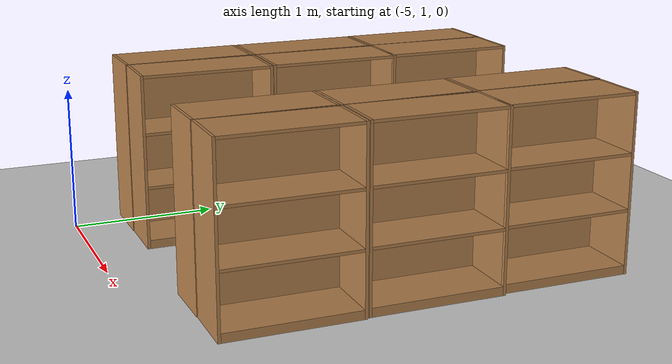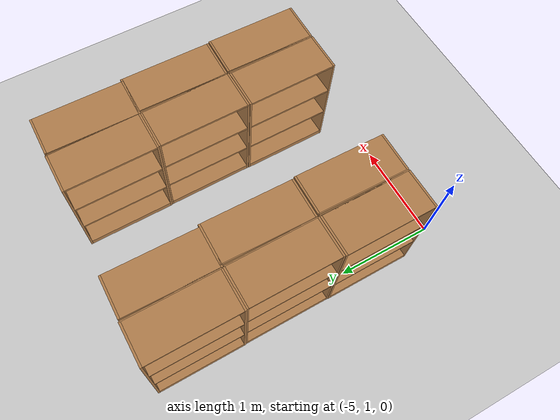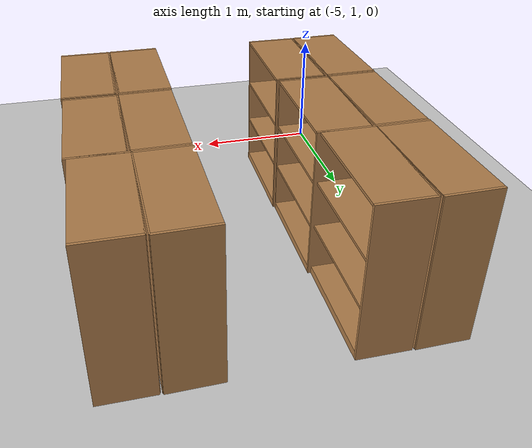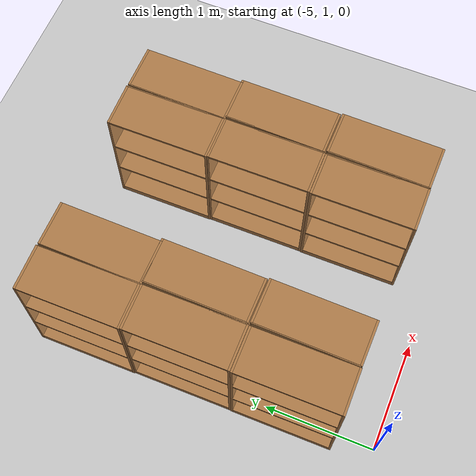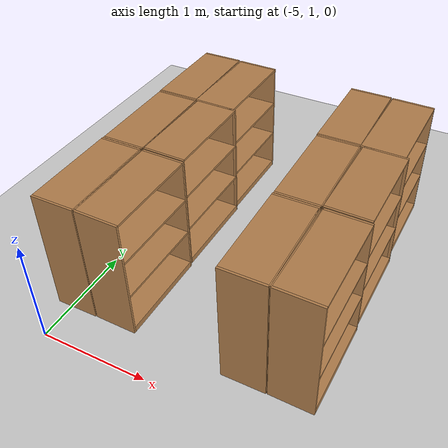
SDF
<sdf version="1.7">
 <world name="default">
  <model name="booookshelf">
   <model name="bookshelf">
    <static>1</static>
    <link name="link">
     <inertial><mass>1</mass></inertial>
     <collision name="back">
      <pose>0 0.005 0.6 0 -0 0</pose>
      <geometry><box><size>0.9 0.01 1.2</size></box></geometry>
     </collision>
     <visual name="visual1">
      <pose>0 0.005 0.6 0 -0 0</pose>
      <geometry><box><size>0.9 0.01 1.2</size></box></geometry>
      <material>
       <script><uri>file://media/materials/scripts/gazebo.material</uri><name>Gazebo/Wood</name></script>
      </material>
     </visual>
     <collision name="left_side">
      <pose>0.45 -0.195 0.6 0 -0 0</pose>
      <geometry><box><size>0.02 0.4 1.2</size></box></geometry>
     </collision>
     <visual name="visual2">
      <pose>0.45 -0.195 0.6 0 -0 0</pose>
      <geometry><box><size>0.02 0.4 1.2</size></box></geometry>
      <material>
       <script><uri>file://media/materials/scripts/gazebo.material</uri><name>Gazebo/Wood</name></script>
      </material>
     </visual>
     <collision name="right_side">
      <pose>-0.45 -0.195 0.6 0 -0 0</pose>
      <geometry><box><size>0.02 0.4 1.2</size></box></geometry>
     </collision>
     <visual name="visual3">
      <pose>-0.45 -0.195 0.6 0 -0 0</pose>
      <geometry><box><size>0.02 0.4 1.2</size></box></geometry>
      <material>
       <script><uri>file://media/materials/scripts/gazebo.material</uri><name>Gazebo/Wood</name></script>
      </material>
     </visual>
     <collision name="bottom">
      <pose>0 -0.195 0.03 0 -0 0</pose>
      <geometry><box><size>0.88 0.4 0.06</size></box></geometry>
     </collision>
     <visual name="visual4">
      <pose>0 -0.195 0.03 0 -0 0</pose>
      <geometry><box><size>0.88 0.4 0.06</size></box></geometry>
      <material>
       <script><uri>file://media/materials/scripts/gazebo.material</uri><name>Gazebo/Wood</name></script>
      </material>
     </visual>
     <collision name="top">
      <pose>0 -0.195 1.19 0 -0 0</pose>
      <geometry><box><size>0.88 0.4 0.02</size></box></geometry>
     </collision>
     <visual name="visual5">
      <pose>0 -0.195 1.19 0 -0 0</pose>
      <geometry><box><size>0.88 0.4 0.02</size></box></geometry>
      <material>
       <script><uri>file://media/materials/scripts/gazebo.material</uri><name>Gazebo/Wood</name></script>
      </material>
     </visual>
     <collision name="low_shelf">
      <pose>0 -0.195 0.43 0 -0 0</pose>
      <geometry><box><size>0.88 0.4 0.02</size></box></geometry>
     </collision>
     <visual name="visual6">
      <pose>0 -0.195 0.43 0 -0 0</pose>
      <geometry><box><size>0.88 0.4 0.02</size></box></geometry>
      <material>
       <script><uri>file://media/materials/scripts/gazebo.material</uri><name>Gazebo/Wood</name></script>
      </material>
     </visual>
     <collision name="high_shelf">
      <pose>0 -0.195 0.8 0 -0 0</pose>
      <geometry><box><size>0.88 0.4 0.02</size></box></geometry>
     </collision>
     <visual name="visual7">
      <pose>0 -0.195 0.8 0 -0 0</pose>
      <geometry><box><size>0.88 0.4 0.02</size></box></geometry>
      <material>
       <script><uri>file://media/materials/scripts/gazebo.material</uri><name>Gazebo/Wood</name></script>
      </material>
     </visual>
    </link>
    <pose>-0.009683 0.000159 0 0 0 -1.56493</pose>
   </model>
   <model name="bookshelf_clone">
    <static>1</static>
    <link name="link">
     <inertial><mass>1</mass></inertial>
     <collision name="back">
      <pose>0 0.005 0.6 0 -0 0</pose>
      <geometry><box><size>0.9 0.01 1.2</size></box></geometry>
     </collision>
     <visual name="visual1">
      <pose>0 0.005 0.6 0 -0 0</pose>
      <geometry><box><size>0.9 0.01 1.2</size></box></geometry>
      <material>
       <script><uri>file://media/materials/scripts/gazebo.material</uri><name>Gazebo/Wood</name></script>
      </material>
     </visual>
     <collision name="left_side">
      <pose>0.45 -0.195 0.6 0 -0 0</pose>
      <geometry><box><size>0.02 0.4 1.2</size></box></geometry>
     </collision>
     <visual name="visual2">
      <pose>0.45 -0.195 0.6 0 -0 0</pose>
      <geometry><box><size>0.02 0.4 1.2</size></box></geometry>
      <material>
       <script><uri>file://media/materials/scripts/gazebo.material</uri><name>Gazebo/Wood</name></script>
      </material>
     </visual>
     <collision name="right_side">
      <pose>-0.45 -0.195 0.6 0 -0 0</pose>
      <geometry><box><size>0.02 0.4 1.2</size></box></geometry>
     </collision>
     <visual name="visual3">
      <pose>-0.45 -0.195 0.6 0 -0 0</pose>
      <geometry><box><size>0.02 0.4 1.2</size></box></geometry>
      <material>
       <script><uri>file://media/materials/scripts/gazebo.material</uri><name>Gazebo/Wood</name></script>
      </material>
     </visual>
     <collision name="bottom">
      <pose>0 -0.195 0.03 0 -0 0</pose>
      <geometry><box><size>0.88 0.4 0.06</size></box></geometry>
     </collision>
     <visual name="visual4">
      <pose>0 -0.195 0.03 0 -0 0</pose>
      <geometry><box><size>0.88 0.4 0.06</size></box></geometry>
      <material>
       <script><uri>file://media/materials/scripts/gazebo.material</uri><name>Gazebo/Wood</name></script>
      </material>
     </visual>
     <collision name="top">
      <pose>0 -0.195 1.19 0 -0 0</pose>
      <geometry><box><size>0.88 0.4 0.02</size></box></geometry>
     </collision>
     <visual name="visual5">
      <pose>0 -0.195 1.19 0 -0 0</pose>
      <geometry><box><size>0.88 0.4 0.02</size></box></geometry>
      <material>
       <script><uri>file://media/materials/scripts/gazebo.material</uri><name>Gazebo/Wood</name></script>
      </material>
     </visual>
     <collision name="low_shelf">
      <pose>0 -0.195 0.43 0 -0 0</pose>
      <geometry><box><size>0.88 0.4 0.02</size></box></geometry>
     </collision>
     <visual name="visual6">
      <pose>0 -0.195 0.43 0 -0 0</pose>
      <geometry><box><size>0.88 0.4 0.02</size></box></geometry>
      <material>
       <script><uri>file://media/materials/scripts/gazebo.material</uri><name>Gazebo/Wood</name></script>
      </material>
     </visual>
     <collision name="high_shelf">
      <pose>0 -0.195 0.8 0 -0 0</pose>
      <geometry><box><size>0.88 0.4 0.02</size></box></geometry>
     </collision>
     <visual name="visual7">
      <pose>0 -0.195 0.8 0 -0 0</pose>
      <geometry><box><size>0.88 0.4 0.02</size></box></geometry>
      <material>
       <script><uri>file://media/materials/scripts/gazebo.material</uri><name>Gazebo/Wood</name></script>
      </material>
     </visual>
    </link>
    <pose>-0.008394 -0.921313 0 0 0 -1.56493</pose>
   </model>
   <model name="bookshelf_clone_0">
    <static>1</static>
    <link name="link">
     <inertial><mass>1</mass></inertial>
     <collision name="back">
      <pose>0 0.005 0.6 0 -0 0</pose>
      <geometry><box><size>0.9 0.01 1.2</size></box></geometry>
     </collision>
     <visual name="visual1">
      <pose>0 0.005 0.6 0 -0 0</pose>
      <geometry><box><size>0.9 0.01 1.2</size></box></geometry>
      <material>
       <script><uri>file://media/materials/scripts/gazebo.material</uri><name>Gazebo/Wood</name></script>
      </material>
     </visual>
     <collision name="left_side">
      <pose>0.45 -0.195 0.6 0 -0 0</pose>
      <geometry><box><size>0.02 0.4 1.2</size></box></geometry>
     </collision>
     <visual name="visual2">
      <pose>0.45 -0.195 0.6 0 -0 0</pose>
      <geometry><box><size>0.02 0.4 1.2</size></box></geometry>
      <material>
       <script><uri>file://media/materials/scripts/gazebo.material</uri><name>Gazebo/Wood</name></script>
      </material>
     </visual>
     <collision name="right_side">
      <pose>-0.45 -0.195 0.6 0 -0 0</pose>
      <geometry><box><size>0.02 0.4 1.2</size></box></geometry>
     </collision>
     <visual name="visual3">
      <pose>-0.45 -0.195 0.6 0 -0 0</pose>
      <geometry><box><size>0.02 0.4 1.2</size></box></geometry>
      <material>
       <script><uri>file://media/materials/scripts/gazebo.material</uri><name>Gazebo/Wood</name></script>
      </material>
     </visual>
     <collision name="bottom">
      <pose>0 -0.195 0.03 0 -0 0</pose>
      <geometry><box><size>0.88 0.4 0.06</size></box></geometry>
     </collision>
     <visual name="visual4">
      <pose>0 -0.195 0.03 0 -0 0</pose>
      <geometry><box><size>0.88 0.4 0.06</size></box></geometry>
      <material>
       <script><uri>file://media/materials/scripts/gazebo.material</uri><name>Gazebo/Wood</name></script>
      </material>
     </visual>
     <collision name="top">
      <pose>0 -0.195 1.19 0 -0 0</pose>
      <geometry><box><size>0.88 0.4 0.02</size></box></geometry>
     </collision>
     <visual name="visual5">
      <pose>0 -0.195 1.19 0 -0 0</pose>
      <geometry><box><size>0.88 0.4 0.02</size></box></geometry>
      <material>
       <script><uri>file://media/materials/scripts/gazebo.material</uri><name>Gazebo/Wood</name></script>
      </material>
     </visual>
     <collision name="low_shelf">
      <pose>0 -0.195 0.43 0 -0 0</pose>
      <geometry><box><size>0.88 0.4 0.02</size></box></geometry>
     </collision>
     <visual name="visual6">
      <pose>0 -0.195 0.43 0 -0 0</pose>
      <geometry><box><size>0.88 0.4 0.02</size></box></geometry>
      <material>
       <script><uri>file://media/materials/scripts/gazebo.material</uri><name>Gazebo/Wood</name></script>
      </material>
     </visual>
     <collision name="high_shelf">
      <pose>0 -0.195 0.8 0 -0 0</pose>
      <geometry><box><size>0.88 0.4 0.02</size></box></geometry>
     </collision>
     <visual name="visual7">
      <pose>0 -0.195 0.8 0 -0 0</pose>
      <geometry><box><size>0.88 0.4 0.02</size></box></geometry>
      <material>
       <script><uri>file://media/materials/scripts/gazebo.material</uri><name>Gazebo/Wood</name></script>
      </material>
     </visual>
    </link>
    <pose>-0.020188 0.9173 0 0 0 -1.56493</pose>
   </model>
   <model name="bookshelf_clone_1">
    <static>1</static>
    <link name="link">
     <inertial><mass>1</mass></inertial>
     <collision name="back">
      <pose>0 0.005 0.6 0 -0 0</pose>
      <geometry><box><size>0.9 0.01 1.2</size></box></geometry>
     </collision>
     <visual name="visual1">
      <pose>0 0.005 0.6 0 -0 0</pose>
      <geometry><box><size>0.9 0.01 1.2</size></box></geometry>
      <material>
       <script><uri>file://media/materials/scripts/gazebo.material</uri><name>Gazebo/Wood</name></script>
      </material>
     </visual>
     <collision name="left_side">
      <pose>0.45 -0.195 0.6 0 -0 0</pose>
      <geometry><box><size>0.02 0.4 1.2</size></box></geometry>
     </collision>
     <visual name="visual2">
      <pose>0.45 -0.195 0.6 0 -0 0</pose>
      <geometry><box><size>0.02 0.4 1.2</size></box></geometry>
      <material>
       <script><uri>file://media/materials/scripts/gazebo.material</uri><name>Gazebo/Wood</name></script>
      </material>
     </visual>
     <collision name="right_side">
      <pose>-0.45 -0.195 0.6 0 -0 0</pose>
      <geometry><box><size>0.02 0.4 1.2</size></box></geometry>
     </collision>
     <visual name="visual3">
      <pose>-0.45 -0.195 0.6 0 -0 0</pose>
      <geometry><box><size>0.02 0.4 1.2</size></box></geometry>
      <material>
       <script><uri>file://media/materials/scripts/gazebo.material</uri><name>Gazebo/Wood</name></script>
      </material>
     </visual>
     <collision name="bottom">
      <pose>0 -0.195 0.03 0 -0 0</pose>
      <geometry><box><size>0.88 0.4 0.06</size></box></geometry>
     </collision>
     <visual name="visual4">
      <pose>0 -0.195 0.03 0 -0 0</pose>
      <geometry><box><size>0.88 0.4 0.06</size></box></geometry>
      <material>
       <script><uri>file://media/materials/scripts/gazebo.material</uri><name>Gazebo/Wood</name></script>
      </material>
     </visual>
     <collision name="top">
      <pose>0 -0.195 1.19 0 -0 0</pose>
      <geometry><box><size>0.88 0.4 0.02</size></box></geometry>
     </collision>
     <visual name="visual5">
      <pose>0 -0.195 1.19 0 -0 0</pose>
      <geometry><box><size>0.88 0.4 0.02</size></box></geometry>
      <material>
       <script><uri>file://media/materials/scripts/gazebo.material</uri><name>Gazebo/Wood</name></script>
      </material>
     </visual>
     <collision name="low_shelf">
      <pose>0 -0.195 0.43 0 -0 0</pose>
      <geometry><box><size>0.88 0.4 0.02</size></box></geometry>
     </collision>
     <visual name="visual6">
      <pose>0 -0.195 0.43 0 -0 0</pose>
      <geometry><box><size>0.88 0.4 0.02</size></box></geometry>
      <material>
       <script><uri>file://media/materials/scripts/gazebo.material</uri><name>Gazebo/Wood</name></script>
      </material>
     </visual>
     <collision name="high_shelf">
      <pose>0 -0.195 0.8 0 -0 0</pose>
      <geometry><box><size>0.88 0.4 0.02</size></box></geometry>
     </collision>
     <visual name="visual7">
      <pose>0 -0.195 0.8 0 -0 0</pose>
      <geometry><box><size>0.88 0.4 0.02</size></box></geometry>
      <material>
       <script><uri>file://media/materials/scripts/gazebo.material</uri><name>Gazebo/Wood</name></script>
      </material>
     </visual>
    </link>
    <pose>0.019389 -0.918185 0 0 -0 1.55949</pose>
   </model>
   <model name="bookshelf_clone_1_clone">
    <static>1</static>
    <link name="link">
     <inertial><mass>1</mass></inertial>
     <collision name="back">
      <pose>0 0.005 0.6 0 -0 0</pose>
      <geometry><box><size>0.9 0.01 1.2</size></box></geometry>
     </collision>
     <visual name="visual1">
      <pose>0 0.005 0.6 0 -0 0</pose>
      <geometry><box><size>0.9 0.01 1.2</size></box></geometry>
      <material>
       <script><uri>file://media/materials/scripts/gazebo.material</uri><name>Gazebo/Wood</name></script>
      </material>
     </visual>
     <collision name="left_side">
      <pose>0.45 -0.195 0.6 0 -0 0</pose>
      <geometry><box><size>0.02 0.4 1.2</size></box></geometry>
     </collision>
     <visual name="visual2">
      <pose>0.45 -0.195 0.6 0 -0 0</pose>
      <geometry><box><size>0.02 0.4 1.2</size></box></geometry>
      <material>
       <script><uri>file://media/materials/scripts/gazebo.material</uri><name>Gazebo/Wood</name></script>
      </material>
     </visual>
     <collision name="right_side">
      <pose>-0.45 -0.195 0.6 0 -0 0</pose>
      <geometry><box><size>0.02 0.4 1.2</size></box></geometry>
     </collision>
     <visual name="visual3">
      <pose>-0.45 -0.195 0.6 0 -0 0</pose>
      <geometry><box><size>0.02 0.4 1.2</size></box></geometry>
      <material>
       <script><uri>file://media/materials/scripts/gazebo.material</uri><name>Gazebo/Wood</name></script>
      </material>
     </visual>
     <collision name="bottom">
      <pose>0 -0.195 0.03 0 -0 0</pose>
      <geometry><box><size>0.88 0.4 0.06</size></box></geometry>
     </collision>
     <visual name="visual4">
      <pose>0 -0.195 0.03 0 -0 0</pose>
      <geometry><box><size>0.88 0.4 0.06</size></box></geometry>
      <material>
       <script><uri>file://media/materials/scripts/gazebo.material</uri><name>Gazebo/Wood</name></script>
      </material>
     </visual>
     <collision name="top">
      <pose>0 -0.195 1.19 0 -0 0</pose>
      <geometry><box><size>0.88 0.4 0.02</size></box></geometry>
     </collision>
     <visual name="visual5">
      <pose>0 -0.195 1.19 0 -0 0</pose>
      <geometry><box><size>0.88 0.4 0.02</size></box></geometry>
      <material>
       <script><uri>file://media/materials/scripts/gazebo.material</uri><name>Gazebo/Wood</name></script>
      </material>
     </visual>
     <collision name="low_shelf">
      <pose>0 -0.195 0.43 0 -0 0</pose>
      <geometry><box><size>0.88 0.4 0.02</size></box></geometry>
     </collision>
     <visual name="visual6">
      <pose>0 -0.195 0.43 0 -0 0</pose>
      <geometry><box><size>0.88 0.4 0.02</size></box></geometry>
      <material>
       <script><uri>file://media/materials/scripts/gazebo.material</uri><name>Gazebo/Wood</name></script>
      </material>
     </visual>
     <collision name="high_shelf">
      <pose>0 -0.195 0.8 0 -0 0</pose>
      <geometry><box><size>0.88 0.4 0.02</size></box></geometry>
     </collision>
     <visual name="visual7">
      <pose>0 -0.195 0.8 0 -0 0</pose>
      <geometry><box><size>0.88 0.4 0.02</size></box></geometry>
      <material>
       <script><uri>file://media/materials/scripts/gazebo.material</uri><name>Gazebo/Wood</name></script>
      </material>
     </visual>
    </link>
    <pose>0.016888 0.010932 0 0 -0 1.55949</pose>
   </model>
   <model name="bookshelf_clone_1_clone_0">
    <static>1</static>
    <link name="link">
     <inertial><mass>1</mass></inertial>
     <collision name="back">
      <pose>0 0.005 0.6 0 -0 0</pose>
      <geometry><box><size>0.9 0.01 1.2</size></box></geometry>
     </collision>
     <visual name="visual1">
      <pose>0 0.005 0.6 0 -0 0</pose>
      <geometry><box><size>0.9 0.01 1.2</size></box></geometry>
      <material>
       <script><uri>file://media/materials/scripts/gazebo.material</uri><name>Gazebo/Wood</name></script>
      </material>
     </visual>
     <collision name="left_side">
      <pose>0.45 -0.195 0.6 0 -0 0</pose>
      <geometry><box><size>0.02 0.4 1.2</size></box></geometry>
     </collision>
     <visual name="visual2">
      <pose>0.45 -0.195 0.6 0 -0 0</pose>
      <geometry><box><size>0.02 0.4 1.2</size></box></geometry>
      <material>
       <script><uri>file://media/materials/scripts/gazebo.material</uri><name>Gazebo/Wood</name></script>
      </material>
     </visual>
     <collision name="right_side">
      <pose>-0.45 -0.195 0.6 0 -0 0</pose>
      <geometry><box><size>0.02 0.4 1.2</size></box></geometry>
     </collision>
     <visual name="visual3">
      <pose>-0.45 -0.195 0.6 0 -0 0</pose>
      <geometry><box><size>0.02 0.4 1.2</size></box></geometry>
      <material>
       <script><uri>file://media/materials/scripts/gazebo.material</uri><name>Gazebo/Wood</name></script>
      </material>
     </visual>
     <collision name="bottom">
      <pose>0 -0.195 0.03 0 -0 0</pose>
      <geometry><box><size>0.88 0.4 0.06</size></box></geometry>
     </collision>
     <visual name="visual4">
      <pose>0 -0.195 0.03 0 -0 0</pose>
      <geometry><box><size>0.88 0.4 0.06</size></box></geometry>
      <material>
       <script><uri>file://media/materials/scripts/gazebo.material</uri><name>Gazebo/Wood</name></script>
      </material>
     </visual>
     <collision name="top">
      <pose>0 -0.195 1.19 0 -0 0</pose>
      <geometry><box><size>0.88 0.4 0.02</size></box></geometry>
     </collision>
     <visual name="visual5">
      <pose>0 -0.195 1.19 0 -0 0</pose>
      <geometry><box><size>0.88 0.4 0.02</size></box></geometry>
      <material>
       <script><uri>file://media/materials/scripts/gazebo.material</uri><name>Gazebo/Wood</name></script>
      </material>
     </visual>
     <collision name="low_shelf">
      <pose>0 -0.195 0.43 0 -0 0</pose>
      <geometry><box><size>0.88 0.4 0.02</size></box></geometry>
     </collision>
     <visual name="visual6">
      <pose>0 -0.195 0.43 0 -0 0</pose>
      <geometry><box><size>0.88 0.4 0.02</size></box></geometry>
      <material>
       <script><uri>file://media/materials/scripts/gazebo.material</uri><name>Gazebo/Wood</name></script>
      </material>
     </visual>
     <collision name="high_shelf">
      <pose>0 -0.195 0.8 0 -0 0</pose>
      <geometry><box><size>0.88 0.4 0.02</size></box></geometry>
     </collision>
     <visual name="visual7">
      <pose>0 -0.195 0.8 0 -0 0</pose>
      <geometry><box><size>0.88 0.4 0.02</size></box></geometry>
      <material>
       <script><uri>file://media/materials/scripts/gazebo.material</uri><name>Gazebo/Wood</name></script>
      </material>
     </visual>
    </link>
    <pose>0.001995 0.911101 0 0 -0 1.55949</pose>
   </model>
   <static>0</static>
   <pose>-3.08471 2.7047 0 0 -0 0</pose>
  </model>
  <model name="booookshelf_0">
   <model name="bookshelf">
    <static>1</static>
    <link name="link">
     <inertial><mass>1</mass></inertial>
     <collision name="back">
      <pose>0 0.005 0.6 0 -0 0</pose>
      <geometry><box><size>0.9 0.01 1.2</size></box></geometry>
     </collision>
     <visual name="visual1">
      <pose>0 0.005 0.6 0 -0 0</pose>
      <geometry><box><size>0.9 0.01 1.2</size></box></geometry>
      <material>
       <script><uri>file://media/materials/scripts/gazebo.material</uri><name>Gazebo/Wood</name></script>
      </material>
     </visual>
     <collision name="left_side">
      <pose>0.45 -0.195 0.6 0 -0 0</pose>
      <geometry><box><size>0.02 0.4 1.2</size></box></geometry>
     </collision>
     <visual name="visual2">
      <pose>0.45 -0.195 0.6 0 -0 0</pose>
      <geometry><box><size>0.02 0.4 1.2</size></box></geometry>
      <material>
       <script><uri>file://media/materials/scripts/gazebo.material</uri><name>Gazebo/Wood</name></script>
      </material>
     </visual>
     <collision name="right_side">
      <pose>-0.45 -0.195 0.6 0 -0 0</pose>
      <geometry><box><size>0.02 0.4 1.2</size></box></geometry>
     </collision>
     <visual name="visual3">
      <pose>-0.45 -0.195 0.6 0 -0 0</pose>
      <geometry><box><size>0.02 0.4 1.2</size></box></geometry>
      <material>
       <script><uri>file://media/materials/scripts/gazebo.material</uri><name>Gazebo/Wood</name></script>
      </material>
     </visual>
     <collision name="bottom">
      <pose>0 -0.195 0.03 0 -0 0</pose>
      <geometry><box><size>0.88 0.4 0.06</size></box></geometry>
     </collision>
     <visual name="visual4">
      <pose>0 -0.195 0.03 0 -0 0</pose>
      <geometry><box><size>0.88 0.4 0.06</size></box></geometry>
      <material>
       <script><uri>file://media/materials/scripts/gazebo.material</uri><name>Gazebo/Wood</name></script>
      </material>
     </visual>
     <collision name="top">
      <pose>0 -0.195 1.19 0 -0 0</pose>
      <geometry><box><size>0.88 0.4 0.02</size></box></geometry>
     </collision>
     <visual name="visual5">
      <pose>0 -0.195 1.19 0 -0 0</pose>
      <geometry><box><size>0.88 0.4 0.02</size></box></geometry>
      <material>
       <script><uri>file://media/materials/scripts/gazebo.material</uri><name>Gazebo/Wood</name></script>
      </material>
     </visual>
     <collision name="low_shelf">
      <pose>0 -0.195 0.43 0 -0 0</pose>
      <geometry><box><size>0.88 0.4 0.02</size></box></geometry>
     </collision>
     <visual name="visual6">
      <pose>0 -0.195 0.43 0 -0 0</pose>
      <geometry><box><size>0.88 0.4 0.02</size></box></geometry>
      <material>
       <script><uri>file://media/materials/scripts/gazebo.material</uri><name>Gazebo/Wood</name></script>
      </material>
     </visual>
     <collision name="high_shelf">
      <pose>0 -0.195 0.8 0 -0 0</pose>
      <geometry><box><size>0.88 0.4 0.02</size></box></geometry>
     </collision>
     <visual name="visual7">
      <pose>0 -0.195 0.8 0 -0 0</pose>
      <geometry><box><size>0.88 0.4 0.02</size></box></geometry>
      <material>
       <script><uri>file://media/materials/scripts/gazebo.material</uri><name>Gazebo/Wood</name></script>
      </material>
     </visual>
    </link>
    <pose>-0.009683 0.000159 0 0 0 -1.56493</pose>
   </model>
   <model name="bookshelf_clone">
    <static>1</static>
    <link name="link">
     <inertial><mass>1</mass></inertial>
     <collision name="back">
      <pose>0 0.005 0.6 0 -0 0</pose>
      <geometry><box><size>0.9 0.01 1.2</size></box></geometry>
     </collision>
     <visual name="visual1">
      <pose>0 0.005 0.6 0 -0 0</pose>
      <geometry><box><size>0.9 0.01 1.2</size></box></geometry>
      <material>
       <script><uri>file://media/materials/scripts/gazebo.material</uri><name>Gazebo/Wood</name></script>
      </material>
     </visual>
     <collision name="left_side">
      <pose>0.45 -0.195 0.6 0 -0 0</pose>
      <geometry><box><size>0.02 0.4 1.2</size></box></geometry>
     </collision>
     <visual name="visual2">
      <pose>0.45 -0.195 0.6 0 -0 0</pose>
      <geometry><box><size>0.02 0.4 1.2</size></box></geometry>
      <material>
       <script><uri>file://media/materials/scripts/gazebo.material</uri><name>Gazebo/Wood</name></script>
      </material>
     </visual>
     <collision name="right_side">
      <pose>-0.45 -0.195 0.6 0 -0 0</pose>
      <geometry><box><size>0.02 0.4 1.2</size></box></geometry>
     </collision>
     <visual name="visual3">
      <pose>-0.45 -0.195 0.6 0 -0 0</pose>
      <geometry><box><size>0.02 0.4 1.2</size></box></geometry>
      <material>
       <script><uri>file://media/materials/scripts/gazebo.material</uri><name>Gazebo/Wood</name></script>
      </material>
     </visual>
     <collision name="bottom">
      <pose>0 -0.195 0.03 0 -0 0</pose>
      <geometry><box><size>0.88 0.4 0.06</size></box></geometry>
     </collision>
     <visual name="visual4">
      <pose>0 -0.195 0.03 0 -0 0</pose>
      <geometry><box><size>0.88 0.4 0.06</size></box></geometry>
      <material>
       <script><uri>file://media/materials/scripts/gazebo.material</uri><name>Gazebo/Wood</name></script>
      </material>
     </visual>
     <collision name="top">
      <pose>0 -0.195 1.19 0 -0 0</pose>
      <geometry><box><size>0.88 0.4 0.02</size></box></geometry>
     </collision>
     <visual name="visual5">
      <pose>0 -0.195 1.19 0 -0 0</pose>
      <geometry><box><size>0.88 0.4 0.02</size></box></geometry>
      <material>
       <script><uri>file://media/materials/scripts/gazebo.material</uri><name>Gazebo/Wood</name></script>
      </material>
     </visual>
     <collision name="low_shelf">
      <pose>0 -0.195 0.43 0 -0 0</pose>
      <geometry><box><size>0.88 0.4 0.02</size></box></geometry>
     </collision>
     <visual name="visual6">
      <pose>0 -0.195 0.43 0 -0 0</pose>
      <geometry><box><size>0.88 0.4 0.02</size></box></geometry>
      <material>
       <script><uri>file://media/materials/scripts/gazebo.material</uri><name>Gazebo/Wood</name></script>
      </material>
     </visual>
     <collision name="high_shelf">
      <pose>0 -0.195 0.8 0 -0 0</pose>
      <geometry><box><size>0.88 0.4 0.02</size></box></geometry>
     </collision>
     <visual name="visual7">
      <pose>0 -0.195 0.8 0 -0 0</pose>
      <geometry><box><size>0.88 0.4 0.02</size></box></geometry>
      <material>
       <script><uri>file://media/materials/scripts/gazebo.material</uri><name>Gazebo/Wood</name></script>
      </material>
     </visual>
    </link>
    <pose>-0.008394 -0.921313 0 0 0 -1.56493</pose>
   </model>
   <model name="bookshelf_clone_0">
    <static>1</static>
    <link name="link">
     <inertial><mass>1</mass></inertial>
     <collision name="back">
      <pose>0 0.005 0.6 0 -0 0</pose>
      <geometry><box><size>0.9 0.01 1.2</size></box></geometry>
     </collision>
     <visual name="visual1">
      <pose>0 0.005 0.6 0 -0 0</pose>
      <geometry><box><size>0.9 0.01 1.2</size></box></geometry>
      <material>
       <script><uri>file://media/materials/scripts/gazebo.material</uri><name>Gazebo/Wood</name></script>
      </material>
     </visual>
     <collision name="left_side">
      <pose>0.45 -0.195 0.6 0 -0 0</pose>
      <geometry><box><size>0.02 0.4 1.2</size></box></geometry>
     </collision>
     <visual name="visual2">
      <pose>0.45 -0.195 0.6 0 -0 0</pose>
      <geometry><box><size>0.02 0.4 1.2</size></box></geometry>
      <material>
       <script><uri>file://media/materials/scripts/gazebo.material</uri><name>Gazebo/Wood</name></script>
      </material>
     </visual>
     <collision name="right_side">
      <pose>-0.45 -0.195 0.6 0 -0 0</pose>
      <geometry><box><size>0.02 0.4 1.2</size></box></geometry>
     </collision>
     <visual name="visual3">
      <pose>-0.45 -0.195 0.6 0 -0 0</pose>
      <geometry><box><size>0.02 0.4 1.2</size></box></geometry>
      <material>
       <script><uri>file://media/materials/scripts/gazebo.material</uri><name>Gazebo/Wood</name></script>
      </material>
     </visual>
     <collision name="bottom">
      <pose>0 -0.195 0.03 0 -0 0</pose>
      <geometry><box><size>0.88 0.4 0.06</size></box></geometry>
     </collision>
     <visual name="visual4">
      <pose>0 -0.195 0.03 0 -0 0</pose>
      <geometry><box><size>0.88 0.4 0.06</size></box></geometry>
      <material>
       <script><uri>file://media/materials/scripts/gazebo.material</uri><name>Gazebo/Wood</name></script>
      </material>
     </visual>
     <collision name="top">
      <pose>0 -0.195 1.19 0 -0 0</pose>
      <geometry><box><size>0.88 0.4 0.02</size></box></geometry>
     </collision>
     <visual name="visual5">
      <pose>0 -0.195 1.19 0 -0 0</pose>
      <geometry><box><size>0.88 0.4 0.02</size></box></geometry>
      <material>
       <script><uri>file://media/materials/scripts/gazebo.material</uri><name>Gazebo/Wood</name></script>
      </material>
     </visual>
     <collision name="low_shelf">
      <pose>0 -0.195 0.43 0 -0 0</pose>
      <geometry><box><size>0.88 0.4 0.02</size></box></geometry>
     </collision>
     <visual name="visual6">
      <pose>0 -0.195 0.43 0 -0 0</pose>
      <geometry><box><size>0.88 0.4 0.02</size></box></geometry>
      <material>
       <script><uri>file://media/materials/scripts/gazebo.material</uri><name>Gazebo/Wood</name></script>
      </material>
     </visual>
     <collision name="high_shelf">
      <pose>0 -0.195 0.8 0 -0 0</pose>
      <geometry><box><size>0.88 0.4 0.02</size></box></geometry>
     </collision>
     <visual name="visual7">
      <pose>0 -0.195 0.8 0 -0 0</pose>
      <geometry><box><size>0.88 0.4 0.02</size></box></geometry>
      <material>
       <script><uri>file://media/materials/scripts/gazebo.material</uri><name>Gazebo/Wood</name></script>
      </material>
     </visual>
    </link>
    <pose>-0.020188 0.9173 0 0 0 -1.56493</pose>
   </model>
   <model name="bookshelf_clone_1">
    <static>1</static>
    <link name="link">
     <inertial><mass>1</mass></inertial>
     <collision name="back">
      <pose>0 0.005 0.6 0 -0 0</pose>
      <geometry><box><size>0.9 0.01 1.2</size></box></geometry>
     </collision>
     <visual name="visual1">
      <pose>0 0.005 0.6 0 -0 0</pose>
      <geometry><box><size>0.9 0.01 1.2</size></box></geometry>
      <material>
       <script><uri>file://media/materials/scripts/gazebo.material</uri><name>Gazebo/Wood</name></script>
      </material>
     </visual>
     <collision name="left_side">
      <pose>0.45 -0.195 0.6 0 -0 0</pose>
      <geometry><box><size>0.02 0.4 1.2</size></box></geometry>
     </collision>
     <visual name="visual2">
      <pose>0.45 -0.195 0.6 0 -0 0</pose>
      <geometry><box><size>0.02 0.4 1.2</size></box></geometry>
      <material>
       <script><uri>file://media/materials/scripts/gazebo.material</uri><name>Gazebo/Wood</name></script>
      </material>
     </visual>
     <collision name="right_side">
      <pose>-0.45 -0.195 0.6 0 -0 0</pose>
      <geometry><box><size>0.02 0.4 1.2</size></box></geometry>
     </collision>
     <visual name="visual3">
      <pose>-0.45 -0.195 0.6 0 -0 0</pose>
      <geometry><box><size>0.02 0.4 1.2</size></box></geometry>
      <material>
       <script><uri>file://media/materials/scripts/gazebo.material</uri><name>Gazebo/Wood</name></script>
      </material>
     </visual>
     <collision name="bottom">
      <pose>0 -0.195 0.03 0 -0 0</pose>
      <geometry><box><size>0.88 0.4 0.06</size></box></geometry>
     </collision>
     <visual name="visual4">
      <pose>0 -0.195 0.03 0 -0 0</pose>
      <geometry><box><size>0.88 0.4 0.06</size></box></geometry>
      <material>
       <script><uri>file://media/materials/scripts/gazebo.material</uri><name>Gazebo/Wood</name></script>
      </material>
     </visual>
     <collision name="top">
      <pose>0 -0.195 1.19 0 -0 0</pose>
      <geometry><box><size>0.88 0.4 0.02</size></box></geometry>
     </collision>
     <visual name="visual5">
      <pose>0 -0.195 1.19 0 -0 0</pose>
      <geometry><box><size>0.88 0.4 0.02</size></box></geometry>
      <material>
       <script><uri>file://media/materials/scripts/gazebo.material</uri><name>Gazebo/Wood</name></script>
      </material>
     </visual>
     <collision name="low_shelf">
      <pose>0 -0.195 0.43 0 -0 0</pose>
      <geometry><box><size>0.88 0.4 0.02</size></box></geometry>
     </collision>
     <visual name="visual6">
      <pose>0 -0.195 0.43 0 -0 0</pose>
      <geometry><box><size>0.88 0.4 0.02</size></box></geometry>
      <material>
       <script><uri>file://media/materials/scripts/gazebo.material</uri><name>Gazebo/Wood</name></script>
      </material>
     </visual>
     <collision name="high_shelf">
      <pose>0 -0.195 0.8 0 -0 0</pose>
      <geometry><box><size>0.88 0.4 0.02</size></box></geometry>
     </collision>
     <visual name="visual7">
      <pose>0 -0.195 0.8 0 -0 0</pose>
      <geometry><box><size>0.88 0.4 0.02</size></box></geometry>
      <material>
       <script><uri>file://media/materials/scripts/gazebo.material</uri><name>Gazebo/Wood</name></script>
      </material>
     </visual>
    </link>
    <pose>0.019389 -0.918185 0 0 -0 1.55949</pose>
   </model>
   <model name="bookshelf_clone_1_clone">
    <static>1</static>
    <link name="link">
     <inertial><mass>1</mass></inertial>
     <collision name="back">
      <pose>0 0.005 0.6 0 -0 0</pose>
      <geometry><box><size>0.9 0.01 1.2</size></box></geometry>
     </collision>
     <visual name="visual1">
      <pose>0 0.005 0.6 0 -0 0</pose>
      <geometry><box><size>0.9 0.01 1.2</size></box></geometry>
      <material>
       <script><uri>file://media/materials/scripts/gazebo.material</uri><name>Gazebo/Wood</name></script>
      </material>
     </visual>
     <collision name="left_side">
      <pose>0.45 -0.195 0.6 0 -0 0</pose>
      <geometry><box><size>0.02 0.4 1.2</size></box></geometry>
     </collision>
     <visual name="visual2">
      <pose>0.45 -0.195 0.6 0 -0 0</pose>
      <geometry><box><size>0.02 0.4 1.2</size></box></geometry>
      <material>
       <script><uri>file://media/materials/scripts/gazebo.material</uri><name>Gazebo/Wood</name></script>
      </material>
     </visual>
     <collision name="right_side">
      <pose>-0.45 -0.195 0.6 0 -0 0</pose>
      <geometry><box><size>0.02 0.4 1.2</size></box></geometry>
     </collision>
     <visual name="visual3">
      <pose>-0.45 -0.195 0.6 0 -0 0</pose>
      <geometry><box><size>0.02 0.4 1.2</size></box></geometry>
      <material>
       <script><uri>file://media/materials/scripts/gazebo.material</uri><name>Gazebo/Wood</name></script>
      </material>
     </visual>
     <collision name="bottom">
      <pose>0 -0.195 0.03 0 -0 0</pose>
      <geometry><box><size>0.88 0.4 0.06</size></box></geometry>
     </collision>
     <visual name="visual4">
      <pose>0 -0.195 0.03 0 -0 0</pose>
      <geometry><box><size>0.88 0.4 0.06</size></box></geometry>
      <material>
       <script><uri>file://media/materials/scripts/gazebo.material</uri><name>Gazebo/Wood</name></script>
      </material>
     </visual>
     <collision name="top">
      <pose>0 -0.195 1.19 0 -0 0</pose>
      <geometry><box><size>0.88 0.4 0.02</size></box></geometry>
     </collision>
     <visual name="visual5">
      <pose>0 -0.195 1.19 0 -0 0</pose>
      <geometry><box><size>0.88 0.4 0.02</size></box></geometry>
      <material>
       <script><uri>file://media/materials/scripts/gazebo.material</uri><name>Gazebo/Wood</name></script>
      </material>
     </visual>
     <collision name="low_shelf">
      <pose>0 -0.195 0.43 0 -0 0</pose>
      <geometry><box><size>0.88 0.4 0.02</size></box></geometry>
     </collision>
     <visual name="visual6">
      <pose>0 -0.195 0.43 0 -0 0</pose>
      <geometry><box><size>0.88 0.4 0.02</size></box></geometry>
      <material>
       <script><uri>file://media/materials/scripts/gazebo.material</uri><name>Gazebo/Wood</name></script>
      </material>
     </visual>
     <collision name="high_shelf">
      <pose>0 -0.195 0.8 0 -0 0</pose>
      <geometry><box><size>0.88 0.4 0.02</size></box></geometry>
     </collision>
     <visual name="visual7">
      <pose>0 -0.195 0.8 0 -0 0</pose>
      <geometry><box><size>0.88 0.4 0.02</size></box></geometry>
      <material>
       <script><uri>file://media/materials/scripts/gazebo.material</uri><name>Gazebo/Wood</name></script>
      </material>
     </visual>
    </link>
    <pose>0.016888 0.010932 0 0 -0 1.55949</pose>
   </model>
   <model name="bookshelf_clone_1_clone_0">
    <static>1</static>
    <link name="link">
     <inertial><mass>1</mass></inertial>
     <collision name="back">
      <pose>0 0.005 0.6 0 -0 0</pose>
      <geometry><box><size>0.9 0.01 1.2</size></box></geometry>
     </collision>
     <visual name="visual1">
      <pose>0 0.005 0.6 0 -0 0</pose>
      <geometry><box><size>0.9 0.01 1.2</size></box></geometry>
      <material>
       <script><uri>file://media/materials/scripts/gazebo.material</uri><name>Gazebo/Wood</name></script>
      </material>
     </visual>
     <collision name="left_side">
      <pose>0.45 -0.195 0.6 0 -0 0</pose>
      <geometry><box><size>0.02 0.4 1.2</size></box></geometry>
     </collision>
     <visual name="visual2">
      <pose>0.45 -0.195 0.6 0 -0 0</pose>
      <geometry><box><size>0.02 0.4 1.2</size></box></geometry>
      <material>
       <script><uri>file://media/materials/scripts/gazebo.material</uri><name>Gazebo/Wood</name></script>
      </material>
     </visual>
     <collision name="right_side">
      <pose>-0.45 -0.195 0.6 0 -0 0</pose>
      <geometry><box><size>0.02 0.4 1.2</size></box></geometry>
     </collision>
     <visual name="visual3">
      <pose>-0.45 -0.195 0.6 0 -0 0</pose>
      <geometry><box><size>0.02 0.4 1.2</size></box></geometry>
      <material>
       <script><uri>file://media/materials/scripts/gazebo.material</uri><name>Gazebo/Wood</name></script>
      </material>
     </visual>
     <collision name="bottom">
      <pose>0 -0.195 0.03 0 -0 0</pose>
      <geometry><box><size>0.88 0.4 0.06</size></box></geometry>
     </collision>
     <visual name="visual4">
      <pose>0 -0.195 0.03 0 -0 0</pose>
      <geometry><box><size>0.88 0.4 0.06</size></box></geometry>
      <material>
       <script><uri>file://media/materials/scripts/gazebo.material</uri><name>Gazebo/Wood</name></script>
      </material>
     </visual>
     <collision name="top">
      <pose>0 -0.195 1.19 0 -0 0</pose>
      <geometry><box><size>0.88 0.4 0.02</size></box></geometry>
     </collision>
     <visual name="visual5">
      <pose>0 -0.195 1.19 0 -0 0</pose>
      <geometry><box><size>0.88 0.4 0.02</size></box></geometry>
      <material>
       <script><uri>file://media/materials/scripts/gazebo.material</uri><name>Gazebo/Wood</name></script>
      </material>
     </visual>
     <collision name="low_shelf">
      <pose>0 -0.195 0.43 0 -0 0</pose>
      <geometry><box><size>0.88 0.4 0.02</size></box></geometry>
     </collision>
     <visual name="visual6">
      <pose>0 -0.195 0.43 0 -0 0</pose>
      <geometry><box><size>0.88 0.4 0.02</size></box></geometry>
      <material>
       <script><uri>file://media/materials/scripts/gazebo.material</uri><name>Gazebo/Wood</name></script>
      </material>
     </visual>
     <collision name="high_shelf">
      <pose>0 -0.195 0.8 0 -0 0</pose>
      <geometry><box><size>0.88 0.4 0.02</size></box></geometry>
     </collision>
     <visual name="visual7">
      <pose>0 -0.195 0.8 0 -0 0</pose>
      <geometry><box><size>0.88 0.4 0.02</size></box></geometry>
      <material>
       <script><uri>file://media/materials/scripts/gazebo.material</uri><name>Gazebo/Wood</name></script>
      </material>
     </visual>
    </link>
    <pose>0.001995 0.911101 0 0 -0 1.55949</pose>
   </model>
   <static>0</static>
   <pose>-4.74127 2.73505 0 0 -0 0</pose>
  </model>
  <model name="ground_plane">
   <static>1</static>
   <link name="link">
    <collision name="collision">
     <geometry><plane><normal>0 0 1</normal><size>100 100</size></plane></geometry>
     <surface>
      <contact><collide_bitmask>65535</collide_bitmask></contact>
      <friction><ode><mu>100</mu><mu2>50</mu2></ode></friction>
     </surface>
    </collision>
    <visual name="visual">
     <cast_shadows>0</cast_shadows>
     <geometry><plane><normal>0 0 1</normal><size>100 100</size></plane></geometry>
     <material>
      <script><uri>file://media/materials/scripts/gazebo.material</uri><name>Gazebo/Grey</name></script>
     </material>
    </visual>
   </link>
  </model>
 </world>
</sdf>
